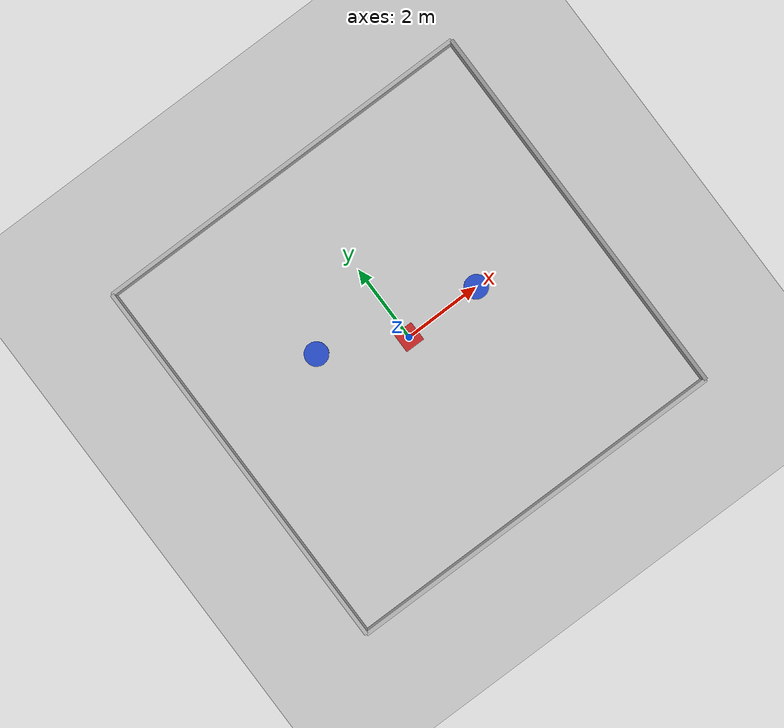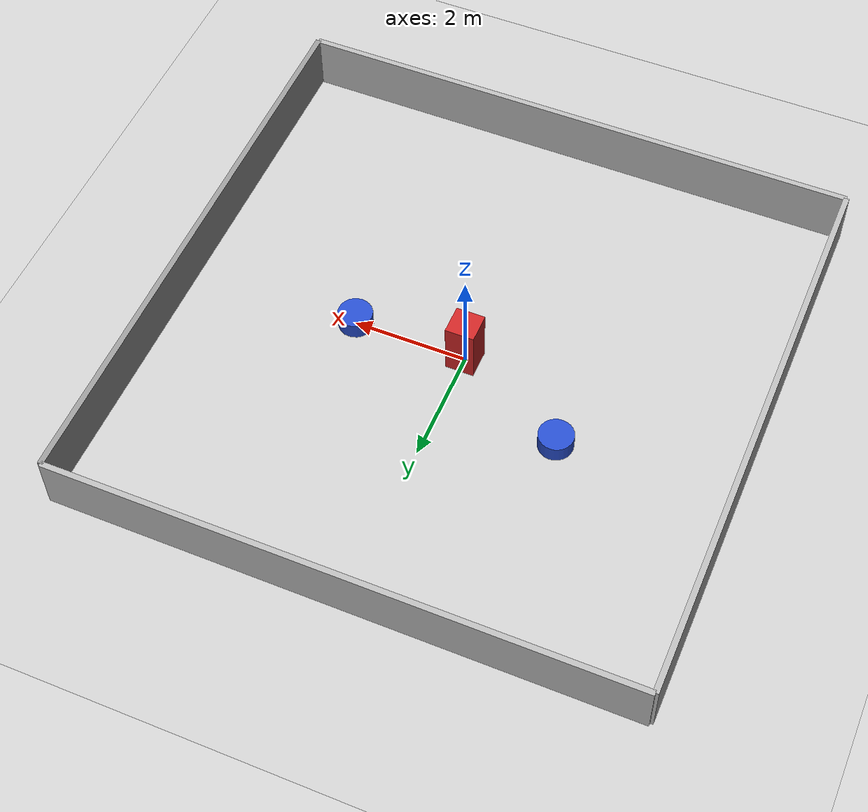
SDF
<?xml version="1.0" ?>
<sdf version="1.5">
  <world name="default">
    <!-- 基础环境：地面和光源 -->
    <include>
      <uri>model://ground_plane</uri>
    </include>
    <include>
      <uri>model://sun</uri>
    </include>

    <!-- 1. 封闭场所 (10m x 10m) -->
    <!-- 我们用四个墙组成，确保厚度足够，激光不会穿透 -->
    <model name="room_walls">
      <static>true</static>
      <link name="link">
        <!-- 北墙 -->
        <collision name="north">
          <pose>5 0 0.5 0 0 0</pose>
          <geometry><box><size>0.1 10 1</size></box></geometry>
        </collision>
        <visual name="north_v">
          <pose>5 0 0.5 0 0 0</pose>
          <geometry><box><size>0.1 10 1</size></box></geometry>
          <material><script><name>Gazebo/Grey</name></script></material>
        </visual>
        <!-- 南墙 -->
        <collision name="south">
          <pose>-5 0 0.5 0 0 0</pose>
          <geometry><box><size>0.1 10 1</size></box></geometry>
        </collision>
        <visual name="south_v">
          <pose>-5 0 0.5 0 0 0</pose>
          <geometry><box><size>0.1 10 1</size></box></geometry>
        </visual>
        <!-- 东墙 -->
        <collision name="east">
          <pose>0 5 0.5 0 0 0</pose>
          <geometry><box><size>10 0.1 1</size></box></geometry>
        </collision>
        <visual name="east_v">
          <pose>0 5 0.5 0 0 0</pose>
          <geometry><box><size>10 0.1 1</size></box></geometry>
        </visual>
        <!-- 西墙 -->
        <collision name="west">
          <pose>0 -5 0.5 0 0 0</pose>
          <geometry><box><size>10 0.1 1</size></box></geometry>
        </collision>
        <visual name="west_v">
          <pose>0 -5 0.5 0 0 0</pose>
          <geometry><box><size>10 0.1 1</size></box></geometry>
        </visual>
      </link>
    </model>

    <!-- 2. 动态物体 (沿着固定路线移动的方块) -->
    <model name="moving_obstacle">
      <pose>0 0 0.5 0 0 0</pose>
      <link name="link">
        <collision name="collision">
          <geometry><box><size>0.5 0.5 1</size></box></geometry>
        </collision>
        <visual name="visual">
          <geometry><box><size>0.5 0.5 1</size></box></geometry>
          <material><script><name>Gazebo/Red</name></script></material>
        </visual>
      </link>
      <!-- 使用内置插件实现往复运动 -->
      <plugin name="push_animate" filename="libanimated_box.so"/>
      <script>
        <loop>true</loop>
        <delay_start>0</delay_start>
        <auto_start>true</auto_start>
        <trajectory id="0" type="linear">
           <waypoint><time>0.0</time><pose>-3 -3 0.5 0 0 0</pose></waypoint>
           <waypoint><time>5.0</time><pose>3 -3 0.5 0 0 0</pose></waypoint>
           <waypoint><time>10.0</time><pose>3 3 0.5 0 0 0</pose></waypoint>
           <waypoint><time>15.0</time><pose>-3 3 0.5 0 0 0</pose></waypoint>
           <waypoint><time>20.0</time><pose>-3 -3 0.5 0 0 0</pose></waypoint>
        </trajectory>
      </script>
    </model>

    <!-- 3. 两个静态圆柱体 (R=0.3, H=0.3) -->
    <model name="cylinder_1">
      <static>true</static>
      <pose>2 0 0.15 0 0 0</pose> <!-- 只要 Z=H/2 就在地面上 -->
      <link name="link">
        <collision name="col">
          <geometry><cylinder><radius>0.3</radius><length>0.3</length></cylinder></geometry>
        </collision>
        <visual name="vis">
          <geometry><cylinder><radius>0.3</radius><length>0.3</length></cylinder></geometry>
          <material><script><name>Gazebo/Blue</name></script></material>
        </visual>
      </link>
    </model>

    <model name="cylinder_2">
      <static>true</static>
      <pose>-2 1 0.15 0 0 0</pose>
      <link name="link">
        <collision name="col">
          <geometry><cylinder><radius>0.3</radius><length>0.3</length></cylinder></geometry>
        </collision>
        <visual name="vis">
          <geometry><cylinder><radius>0.3</radius><length>0.3</length></cylinder></geometry>
          <material><script><name>Gazebo/Blue</name></script></material>
        </visual>
      </link>
    </model>

  </world>
</sdf>
